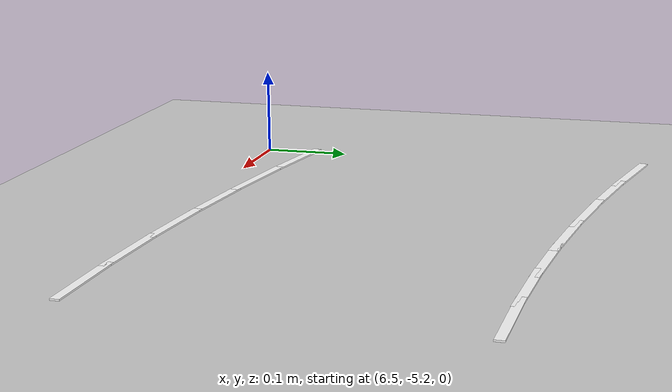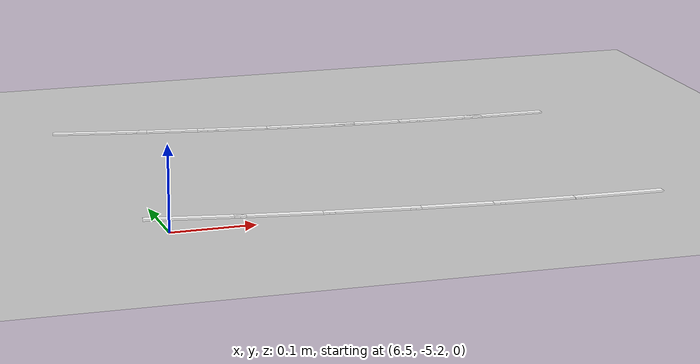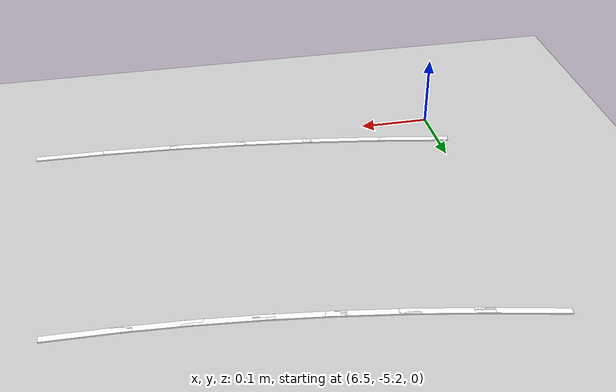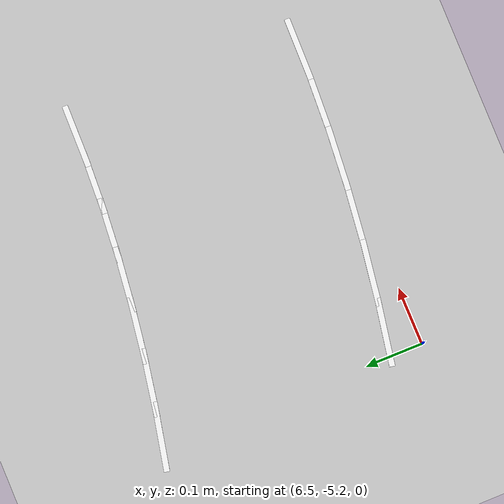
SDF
<sdf version="1.7">
 <world name="default">
  <model name="ground_plane">
   <static>1</static>
   <link name="link">
    <collision name="collision">
     <geometry><plane><normal>0 0 1</normal><size>100 100</size></plane></geometry>
     <surface>
      <contact><collide_bitmask>65535</collide_bitmask></contact>
      <friction><ode><mu>100</mu><mu2>50</mu2></ode></friction>
     </surface>
    </collision>
    <visual name="visual">
     <cast_shadows>0</cast_shadows>
     <geometry><plane><normal>0 0 1</normal><size>100 100</size></plane></geometry>
     <material>
      <script><uri>file://media/materials/scripts/gazebo.material</uri><name>Gazebo/Grey</name></script>
     </material>
    </visual>
   </link>
  </model>
  <model name="lane_line_left_187">
   <static>1</static>
   <link name="link">
    <pose>0 0 -0.004 0 -0 0</pose>
    <visual name="visual">
     <geometry><box><size>0.1095 0.01 0.01</size></box></geometry>
     <material><ambient>1 1 1 1</ambient><diffuse>1 1 1 1</diffuse></material>
    </visual>
    <collision name="collision"><geometry><box><size>0.1095 0.01 0.01</size></box></geometry></collision>
   </link>
   <pose>7.0348 -5.19936 0 0 -0 3.1283</pose>
  </model>
  <model name="lane_line_right_187">
   <static>1</static>
   <link name="link">
    <pose>0 0 -0.004 0 -0 0</pose>
    <visual name="visual">
     <geometry><box><size>0.1095 0.01 0.01</size></box></geometry>
     <material><ambient>1 1 1 1</ambient><diffuse>1 1 1 1</diffuse></material>
    </visual>
    <collision name="collision"><geometry><box><size>0.1095 0.01 0.01</size></box></geometry></collision>
   </link>
   <pose>7.04012 -4.7994 0 0 -0 3.1283</pose>
  </model>
  <model name="lane_line_left_188">
   <static>1</static>
   <link name="link">
    <pose>0 0 -0.004 0 -0 0</pose>
    <visual name="visual">
     <geometry><box><size>0.1107 0.01 0.01</size></box></geometry>
     <material><ambient>1 1 1 1</ambient><diffuse>1 1 1 1</diffuse></material>
    </visual>
    <collision name="collision"><geometry><box><size>0.1107 0.01 0.01</size></box></geometry></collision>
   </link>
   <pose>6.93784 -5.19638 0 0 -0 3.0935</pose>
  </model>
  <model name="lane_line_right_188">
   <static>1</static>
   <link name="link">
    <pose>0 0 -0.004 0 -0 0</pose>
    <visual name="visual">
     <geometry><box><size>0.1107 0.01 0.01</size></box></geometry>
     <material><ambient>1 1 1 1</ambient><diffuse>1 1 1 1</diffuse></material>
    </visual>
    <collision name="collision"><geometry><box><size>0.1107 0.01 0.01</size></box></geometry></collision>
   </link>
   <pose>6.95707 -4.79684 0 0 -0 3.0935</pose>
  </model>
  <model name="lane_line_left_189">
   <static>1</static>
   <link name="link">
    <pose>0 0 -0.004 0 -0 0</pose>
    <visual name="visual">
     <geometry><box><size>0.112 0.01 0.01</size></box></geometry>
     <material><ambient>1 1 1 1</ambient><diffuse>1 1 1 1</diffuse></material>
    </visual>
    <collision name="collision"><geometry><box><size>0.112 0.01 0.01</size></box></geometry></collision>
   </link>
   <pose>6.83997 -5.18999 0 0 -0 3.05966</pose>
  </model>
  <model name="lane_line_right_189">
   <static>1</static>
   <link name="link">
    <pose>0 0 -0.004 0 -0 0</pose>
    <visual name="visual">
     <geometry><box><size>0.112 0.01 0.01</size></box></geometry>
     <material><ambient>1 1 1 1</ambient><diffuse>1 1 1 1</diffuse></material>
    </visual>
    <collision name="collision"><geometry><box><size>0.112 0.01 0.01</size></box></geometry></collision>
   </link>
   <pose>6.87271 -4.79133 0 0 -0 3.05966</pose>
  </model>
  <model name="lane_line_left_190">
   <static>1</static>
   <link name="link">
    <pose>0 0 -0.004 0 -0 0</pose>
    <visual name="visual">
     <geometry><box><size>0.1134 0.01 0.01</size></box></geometry>
     <material><ambient>1 1 1 1</ambient><diffuse>1 1 1 1</diffuse></material>
    </visual>
    <collision name="collision"><geometry><box><size>0.1134 0.01 0.01</size></box></geometry></collision>
   </link>
   <pose>6.74124 -5.18024 0 0 -0 3.02684</pose>
  </model>
  <model name="lane_line_right_190">
   <static>1</static>
   <link name="link">
    <pose>0 0 -0.004 0 -0 0</pose>
    <visual name="visual">
     <geometry><box><size>0.1134 0.01 0.01</size></box></geometry>
     <material><ambient>1 1 1 1</ambient><diffuse>1 1 1 1</diffuse></material>
    </visual>
    <collision name="collision"><geometry><box><size>0.1134 0.01 0.01</size></box></geometry></collision>
   </link>
   <pose>6.78704 -4.78287 0 0 -0 3.02684</pose>
  </model>
  <model name="lane_line_left_191">
   <static>1</static>
   <link name="link">
    <pose>0 0 -0.004 0 -0 0</pose>
    <visual name="visual">
     <geometry><box><size>0.1148 0.01 0.01</size></box></geometry>
     <material><ambient>1 1 1 1</ambient><diffuse>1 1 1 1</diffuse></material>
    </visual>
    <collision name="collision"><geometry><box><size>0.1148 0.01 0.01</size></box></geometry></collision>
   </link>
   <pose>6.64167 -5.16715 0 0 -0 2.99506</pose>
  </model>
  <model name="lane_line_right_191">
   <static>1</static>
   <link name="link">
    <pose>0 0 -0.004 0 -0 0</pose>
    <visual name="visual">
     <geometry><box><size>0.1148 0.01 0.01</size></box></geometry>
     <material><ambient>1 1 1 1</ambient><diffuse>1 1 1 1</diffuse></material>
    </visual>
    <collision name="collision"><geometry><box><size>0.1148 0.01 0.01</size></box></geometry></collision>
   </link>
   <pose>6.70008 -4.77143 0 0 -0 2.99506</pose>
  </model>
  <model name="lane_line_left_192">
   <static>1</static>
   <link name="link">
    <pose>0 0 -0.004 0 -0 0</pose>
    <visual name="visual">
     <geometry><box><size>0.1164 0.01 0.01</size></box></geometry>
     <material><ambient>1 1 1 1</ambient><diffuse>1 1 1 1</diffuse></material>
    </visual>
    <collision name="collision"><geometry><box><size>0.1164 0.01 0.01</size></box></geometry></collision>
   </link>
   <pose>6.54128 -5.15074 0 0 -0 2.96434</pose>
  </model>
  <model name="lane_line_right_192">
   <static>1</static>
   <link name="link">
    <pose>0 0 -0.004 0 -0 0</pose>
    <visual name="visual">
     <geometry><box><size>0.1164 0.01 0.01</size></box></geometry>
     <material><ambient>1 1 1 1</ambient><diffuse>1 1 1 1</diffuse></material>
    </visual>
    <collision name="collision"><geometry><box><size>0.1164 0.01 0.01</size></box></geometry></collision>
   </link>
   <pose>6.61181 -4.75701 0 0 -0 2.96434</pose>
  </model>
  <model name="lane_line_right_193">
   <static>1</static>
   <link name="link">
    <pose>0 0 -0.004 0 -0 0</pose>
    <visual name="visual">
     <geometry><box><size>0.118 0.01 0.01</size></box></geometry>
     <material><ambient>1 1 1 1</ambient><diffuse>1 1 1 1</diffuse></material>
    </visual>
    <collision name="collision"><geometry><box><size>0.118 0.01 0.01</size></box></geometry></collision>
   </link>
   <pose>6.52226 -4.73958 0 0 -0 2.93469</pose>
  </model>
 </world>
</sdf>
